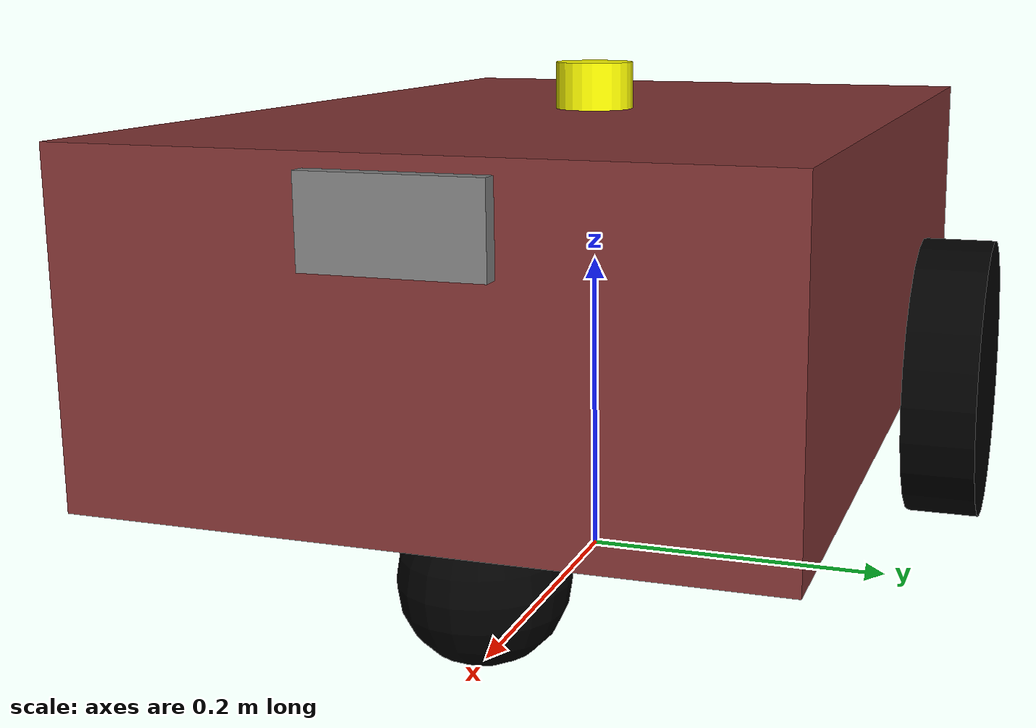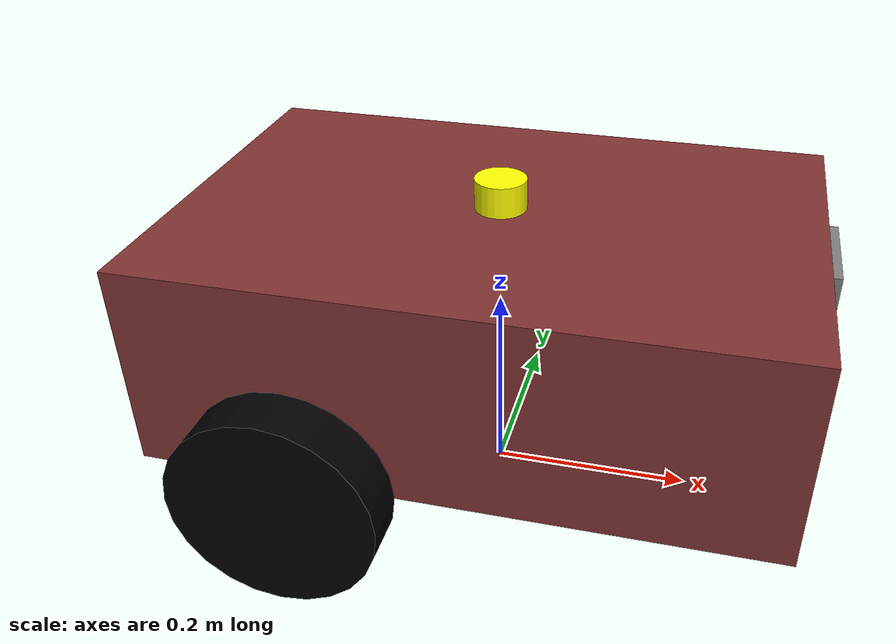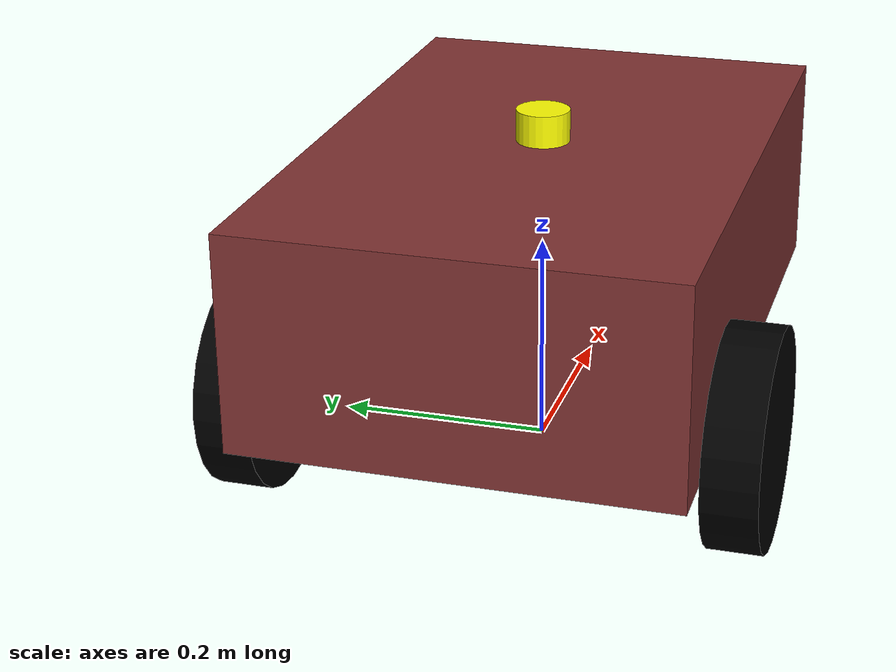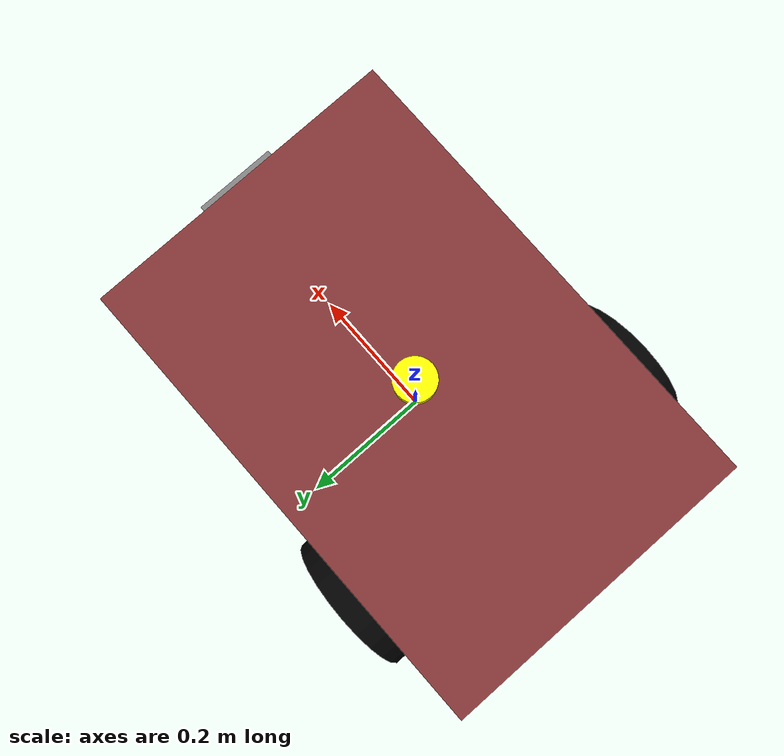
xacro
<?xml version="1.0"?>
<robot name="vroom" xmlns:xacro="http://www.ros.org/wiki/xacro">

    <!-- sensor plugin for lidar and camera -->
    <gazebo>
        <plugin name="gz::sim::systems::Sensors" filename="gz-sim-sensors-system">
            <render_engine>ogre2</render_engine>
        </plugin>
    </gazebo>
    <xacro:include filename = "common_properties.xacro" />
    <xacro:include filename = "mobile_base.xacro" />
    <xacro:include filename = "mobile_base_gazebo.xacro" />
    <xacro:include filename = "camera.xacro" />
    <xacro:include filename = "lidar_sensor.xacro" />
</robot>

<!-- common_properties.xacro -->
<robot xmlns:xacro="http://www.ros.org/wiki/xacro">
    <material name = "muted-reddish-brown">
        <color rgba = "0.5 0.2 0.2 1"/>
    </material>

    <material name = "grey">
        <color rgba = "0.5 0.5 0.5 1"/>
    </material>

    <material name = "black">
        <color rgba = "0 0 0 1"/>
    </material>

    <material name="yellow">
        <color rgba="1.0 1.0 0.0 1.0"/>
    </material>

    <material name="orange">
        <color rgba="0.953 0.612 0.071 1.0"/>
    </material>

    <!-- xacro macro (functions) for inertia -->
    <xacro:macro name="box_inertia" params="m x y z o_xyz o_rpy">
        <inertial>
            <mass value="${m}"/>
            <origin xyz="${o_xyz}" rpy="${o_rpy}"/>
            <inertia ixx="${(m/12) * (y**2 + z**2)}" ixy="0" ixz="0"
                     iyy="${(m/12) * (x**2 + z**2)}" iyz="0"
                     izz="${(m/12) * (x**2 + y**2)}"
            />
        </inertial>
    </xacro:macro>

    <xacro:macro name="solid_sphere_inertia" params="m r o_xyz o_rpy">
        <inertial>
            <mass value="${m}"/>
            <origin xyz="${o_xyz}" rpy="${o_rpy}"/>
            <inertia ixx="${(2/5) * (m*(r**2))}" ixy="0" ixz="0"
                     iyy="${(2/5) * (m*(r**2))}" iyz="0"
                     izz="${(2/5) * (m*(r**2))}"
            />
        </inertial>
    </xacro:macro>

    <xacro:macro name="solid_cylinder_inertia" params="m r h o_xyz o_rpy">
        <inertial>
            <mass value="${m}"/>
            <origin xyz="${o_xyz}" rpy="${o_rpy}"/>
            <inertia ixx="${(m/12) * ((3*(r**2)) + h**2)}" ixy="0" ixz="0"
                     iyy="${(m/12) * ((3*(r**2)) + h**2)}" iyz="0"
                     izz="${(m/2) * (r**2)}"
            />
        </inertial>
    </xacro:macro>

</robot>

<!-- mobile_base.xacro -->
<robot name="vroom" xmlns:xacro="http://www.ros.org/wiki/xacro">

    <!-- xacro property (variables) -->
    <xacro:property name="base_length" value="0.6" />
    <xacro:property name="base_width" value="0.4"  />
    <xacro:property name="base_height" value="0.2" />
    <xacro:property name="wheel_radius" value="0.1" />
    <xacro:property name="wheel_length" value="0.05" />

    <!-- xacro macro (functions) -->
    <xacro:macro name="wheel_link" params="prefix">
        <link name="${prefix}_wheel_link">
            <visual>
                <geometry>
                    <cylinder radius="${wheel_radius}" length="${wheel_length}"/>
                </geometry>
                <origin xyz="0 0 0" rpy="${-pi/2.0} 0 0" />
                <material name="black"/>
            </visual>

            <collision>
                <geometry>
                    <sphere radius="${wheel_radius}"/>
                </geometry>
                <origin xyz="0 0 0" rpy="0 0 0" />
            </collision>

            <xacro:solid_cylinder_inertia m="1.0" r="${wheel_radius}" h="${wheel_length}" o_xyz="0 0 0" o_rpy="${-pi/2.0} 0 0"/>
        </link>
    </xacro:macro>

    <!-- link / rigid body defintion -->
    <link name="base_footprint"/>

    <link name="base_link">
        <visual>
            <geometry>
                <box size= "${base_length} ${base_width} ${base_height}"/>
            </geometry>
            <origin xyz="0 0 ${base_height / 2.0}" rpy="0 0 0" />
            <material name="muted-reddish-brown"/>
        </visual>

        <collision>
            <geometry>
                <box size= "${base_length} ${base_width} ${base_height}"/>
            </geometry>
            <origin xyz="0 0 ${base_height / 2.0}" rpy="0 0 0" />
        </collision>

        <xacro:box_inertia m="5.0" x="${base_length}" y="${base_width}" z="${base_height}" o_xyz="0 0 ${base_height/2.0}" o_rpy="0 0 0" />
    </link>

    <xacro:wheel_link prefix="left"/>
    <xacro:wheel_link prefix="right"/>

    <link name="castor_wheel_link">
        <visual>
            <geometry>
                <sphere radius="${wheel_radius/2.0}"/>
            </geometry>
            <origin xyz="0 0 0" rpy="0 0 0" />
            <material name="black"/>
        </visual>

        <collision>
            <geometry>
                <sphere radius="${wheel_radius/2.0}"/>
            </geometry>
            <origin xyz="0 0 0" rpy="0 0 0" />
        </collision>

        <xacro:solid_sphere_inertia m="0.5" r="${wheel_radius/2.0}" o_xyz="0 0 0" o_rpy="0 0 0"/>
    </link>

    <!-- joint relation between links -->
    <joint name="base_joint" type="fixed">
        <parent link="base_footprint"/>
        <child link="base_link"/>
        <origin xyz="0 0 ${wheel_radius}" rpy="0 0 0" />
    </joint>

    <joint name="base_castor_wheel_joint" type="fixed">
        <parent link="base_link"/>
        <child link="castor_wheel_link"/>
        <origin xyz="${base_length/3.0} 0 ${-wheel_radius/2.0}" rpy="0 0 0" />
    </joint>

    <joint name="base_left_wheel_joint" type="continuous">
        <parent link="base_link"/>
        <child link="left_wheel_link"/>
        <origin xyz="${-base_length/4.0} ${(base_width + wheel_length)/2.0} 0.0" rpy="0 0 0" />
        <axis xyz="0 1 0 " />
    </joint>

    <joint name="base_right_wheel_joint" type="continuous">
        <parent link="base_link"/>
        <child link="right_wheel_link"/>
        <origin xyz="${-base_length/4.0}  ${-(base_width + wheel_length)/2.0} 0.0" rpy="0 0 0" />
        <axis xyz="0 1 0 " />
    </joint>
</robot>

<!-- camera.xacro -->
<robot xmlns:xacro="http://www.ros.org/wiki/xacro">

    <xacro:property name="camera_length" value="0.01" />
    <xacro:property name="camera_width" value="0.1" />
    <xacro:property name="camera_height" value="0.05" />

    <link name="camera_link">
        <visual>
            <geometry>
                <box size="${camera_length} ${camera_width} ${camera_height}" />
            </geometry>
            <material name="grey" />
        </visual>
        <collision>
            <geometry>
                <box size="${camera_length} ${camera_width} ${camera_height}" />
            </geometry>
        </collision>
        <xacro:box_inertia m="0.1" x="${camera_length}" y="${camera_width}" z="${camera_height}" o_xyz="0 0 0" o_rpy="0 0 0" />
    </link>

    <joint name="base_camera_link" type="fixed">
        <parent link="base_link" />
        <child link="camera_link" />
        <origin xyz="${(camera_length + base_length)/2.0} 0 ${base_height/1.2}" rpy="0 0 0" />
    </joint>

    <link name="camera_link_optical">
    </link>

    <joint name="camera_optical_joint" type="fixed">
        <origin xyz="0 0 0" rpy="${-pi/2} 0 ${-pi/2}"/>
        <parent link="camera_link"/>
        <child link="camera_link_optical"/>
    </joint>

    <gazebo reference="camera_link">
        <sensor type="camera" name="my_camera_sensor">
          <camera>
            <horizontal_fov>0.873</horizontal_fov>
            <image>
              <width>640</width>
              <height>480</height>
              <format>R8G8B8</format>
            </image>
            <clip>
              <near>0.1</near>
              <far>15</far>
            </clip>
            <noise>
                <type>gaussian</type>
                <mean>0.0</mean>
                <stddev>0.007</stddev>
            </noise>
            <optical_frame_id>camera_link_optical</optical_frame_id>
            <camera_info_topic>camera/camera_info</camera_info_topic>
          </camera>
          <always_on>1</always_on>
          <update_rate>10</update_rate>
          <visualize>true</visualize>
          <topic>camera/image_raw</topic>
        </sensor>
    </gazebo>
</robot>

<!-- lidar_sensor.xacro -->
<robot xmlns:xacro="http://www.ros.org/wiki/xacro">

    <xacro:property name="lidar_radius" value="0.025" />
    <xacro:property name="lidar_length" value="0.03" />

    <link name="lidar_link">
    <visual>
        <geometry>
            <cylinder radius="${lidar_radius}" length="${lidar_length}"/>
        </geometry>
        <material name="yellow"/>
    </visual>
    <collision>
        <geometry>
            <cylinder radius="${lidar_radius}" length="${lidar_length}"/>
        </geometry>
    </collision>
    <xacro:solid_cylinder_inertia m="0.1" r="${lidar_radius}" h="${lidar_length}" o_xyz="0 0 0" o_rpy="0 0 0"/>
    </link>

    <joint name="base_lidar_link" type="fixed">
        <parent link="base_link" />
        <child link="lidar_link" />
        <origin xyz="0 0 ${base_height + (lidar_length)/2}" rpy="0 0 0" />
    </joint>

    <gazebo reference="lidar_link">
        <sensor type="gpu_lidar" name="my_gpu_lidar_sensor">
            <pose relative_to='lidar_link'>0 0 0 0 0 0</pose>
            <gz_frame_id>lidar_link</gz_frame_id>
            <lidar>
                <scan>
                    <horizontal>
                        <samples>720</samples>
                        <resolution>1</resolution>
                        <min_angle>-3.14</min_angle>
                        <max_angle>3.14</max_angle>
                    </horizontal>
                </scan>
                <range>
                    <min>0.01</min>
                    <max>12.0</max>
                    <resolution>0.01</resolution>
                </range>
            </lidar>
            <always_on>1</always_on>
            <update_rate>32</update_rate>
            <visualize>1</visualize>
            <topic>scan</topic>
        </sensor>
    </gazebo>
</robot>
